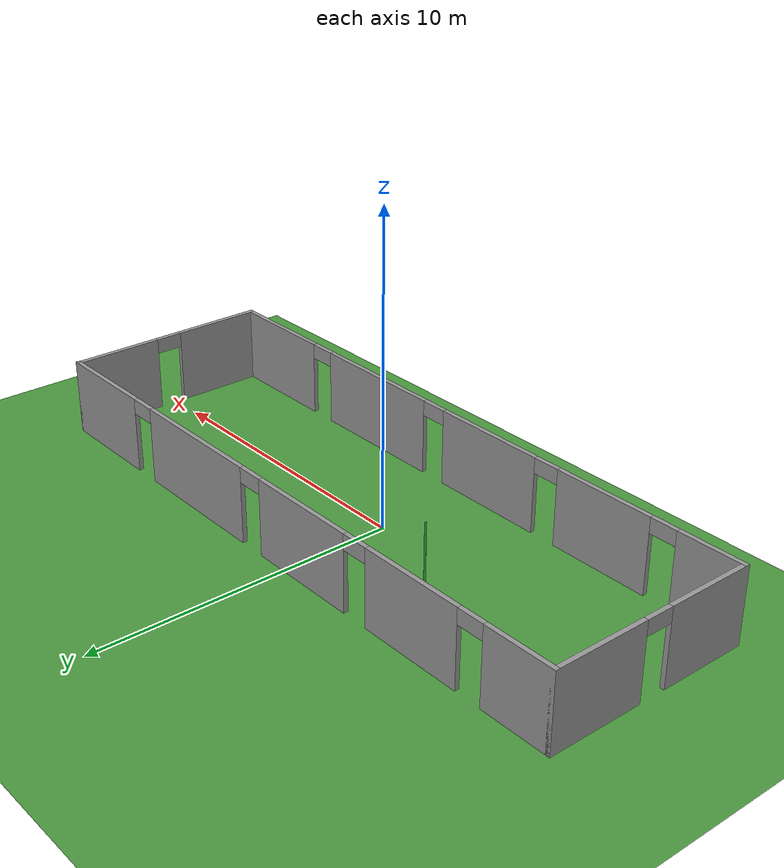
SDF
<sdf version="1.7">
 <world name="default">
  <include><uri>model://sun</uri></include>
  <gravity>0 0 -9.8</gravity>
  <magnetic_field>6e-06 2.3e-05 -4.2e-05</magnetic_field>
  <atmosphere type="adiabatic"/>
  <physics type="ode">
   <max_step_size>0.001</max_step_size>
   <real_time_factor>1</real_time_factor>
   <real_time_update_rate>1000</real_time_update_rate>
  </physics>
  <scene><ambient>0.4 0.4 0.4 1</ambient><background>0.7 0.7 0.7 1</background><shadows>1</shadows></scene>
  <spherical_coordinates>
   <surface_model>EARTH_WGS84</surface_model>
   <latitude_deg>0</latitude_deg>
   <longitude_deg>0</longitude_deg>
   <elevation>0</elevation>
   <heading_deg>0</heading_deg>
  </spherical_coordinates>
  <model name="ground_plane">
   <static>true</static>
   <link name="link">
    <collision name="collision">
     <geometry><plane><normal>0 0 1</normal><size>100 100</size></plane></geometry>
     <surface><friction><ode><mu>100</mu><mu2>50</mu2></ode></friction></surface>
    </collision>
    <visual name="visual">
     <geometry><plane><normal>0 0 1</normal><size>100 100</size></plane></geometry>
     <material>
      <script><uri>file://media/materials/scripts/gazebo.material</uri><name>Gazebo/Grass</name></script>
     </material>
    </visual>
   </link>
  </model>
  <model name="Hallway_0">
   <pose>0.439449 0.139492 0 0 -0 0</pose>
   <link name="Wall_0">
    <pose>-0.091771 -3.425 0 0 -0 0</pose>
    <visual name="Wall_0_Visual_0">
     <pose>-9.62929 0 1.25 0 -0 0</pose>
     <geometry><box><size>2.24143 0.15 2.5</size></box></geometry>
     <material>
      <script><uri>file://media/materials/scripts/gazebo.material</uri><name>Gazebo/Grey</name></script>
      <ambient>1 1 1 1</ambient>
     </material>
     <meta><layer>0</layer></meta>
    </visual>
    <collision name="Wall_0_Collision_0">
     <geometry><box><size>2.24143 0.15 2.5</size></box></geometry>
     <pose>-9.62929 0 1.25 0 -0 0</pose>
    </collision>
    <visual name="Wall_0_Visual_1">
     <pose>-5.89586 0 1.25 0 -0 0</pose>
     <geometry><box><size>3.42542 0.15 2.5</size></box></geometry>
     <material>
      <script><uri>file://media/materials/scripts/gazebo.material</uri><name>Gazebo/Grey</name></script>
      <ambient>1 1 1 1</ambient>
     </material>
     <meta><layer>0</layer></meta>
    </visual>
    <collision name="Wall_0_Collision_1">
     <geometry><box><size>3.42542 0.15 2.5</size></box></geometry>
     <pose>-5.89586 0 1.25 0 -0 0</pose>
    </collision>
    <visual name="Wall_0_Visual_2">
     <pose>-1.32757 0 1.25 0 -0 0</pose>
     <geometry><box><size>3.91117 0.15 2.5</size></box></geometry>
     <material>
      <script><uri>file://media/materials/scripts/gazebo.material</uri><name>Gazebo/Grey</name></script>
      <ambient>1 1 1 1</ambient>
     </material>
     <meta><layer>0</layer></meta>
    </visual>
    <collision name="Wall_0_Collision_2">
     <geometry><box><size>3.91117 0.15 2.5</size></box></geometry>
     <pose>-1.32757 0 1.25 0 -0 0</pose>
    </collision>
    <visual name="Wall_0_Visual_3">
     <pose>3.86525 0 1.25 0 -0 0</pose>
     <geometry><box><size>4.67448 0.15 2.5</size></box></geometry>
     <material>
      <script><uri>file://media/materials/scripts/gazebo.material</uri><name>Gazebo/Grey</name></script>
      <ambient>1 1 1 1</ambient>
     </material>
     <meta><layer>0</layer></meta>
    </visual>
    <collision name="Wall_0_Collision_3">
     <geometry><box><size>4.67448 0.15 2.5</size></box></geometry>
     <pose>3.86525 0 1.25 0 -0 0</pose>
    </collision>
    <visual name="Wall_0_Visual_4">
     <pose>8.92625 0 1.25 0 -0 0</pose>
     <geometry><box><size>3.64751 0.15 2.5</size></box></geometry>
     <material>
      <script><uri>file://media/materials/scripts/gazebo.material</uri><name>Gazebo/Grey</name></script>
      <ambient>1 1 1 1</ambient>
     </material>
     <meta><layer>0</layer></meta>
    </visual>
    <collision name="Wall_0_Collision_4">
     <geometry><box><size>3.64751 0.15 2.5</size></box></geometry>
     <pose>8.92625 0 1.25 0 -0 0</pose>
    </collision>
    <visual name="Wall_0_Visual_5">
     <pose>-8.05857 0 2.25 0 -0 0</pose>
     <geometry><box><size>0.9 0.15 0.5</size></box></geometry>
     <material>
      <script><uri>file://media/materials/scripts/gazebo.material</uri><name>Gazebo/Grey</name></script>
      <ambient>1 1 1 1</ambient>
     </material>
     <meta><layer>0</layer></meta>
    </visual>
    <collision name="Wall_0_Collision_5">
     <geometry><box><size>0.9 0.15 0.5</size></box></geometry>
     <pose>-8.05857 0 2.25 0 -0 0</pose>
    </collision>
    <visual name="Wall_0_Visual_6">
     <pose>-3.73315 0 2.25 0 -0 0</pose>
     <geometry><box><size>0.9 0.15 0.5</size></box></geometry>
     <material>
      <script><uri>file://media/materials/scripts/gazebo.material</uri><name>Gazebo/Grey</name></script>
      <ambient>1 1 1 1</ambient>
     </material>
     <meta><layer>0</layer></meta>
    </visual>
    <collision name="Wall_0_Collision_6">
     <geometry><box><size>0.9 0.15 0.5</size></box></geometry>
     <pose>-3.73315 0 2.25 0 -0 0</pose>
    </collision>
    <visual name="Wall_0_Visual_7">
     <pose>1.07802 0 2.25 0 -0 0</pose>
     <geometry><box><size>0.9 0.15 0.5</size></box></geometry>
     <material>
      <script><uri>file://media/materials/scripts/gazebo.material</uri><name>Gazebo/Grey</name></script>
      <ambient>1 1 1 1</ambient>
     </material>
     <meta><layer>0</layer></meta>
    </visual>
    <collision name="Wall_0_Collision_7">
     <geometry><box><size>0.9 0.15 0.5</size></box></geometry>
     <pose>1.07802 0 2.25 0 -0 0</pose>
    </collision>
    <visual name="Wall_0_Visual_8">
     <pose>6.65249 0 2.25 0 -0 0</pose>
     <geometry><box><size>0.9 0.15 0.5</size></box></geometry>
     <material>
      <script><uri>file://media/materials/scripts/gazebo.material</uri><name>Gazebo/Grey</name></script>
      <ambient>1 1 1 1</ambient>
     </material>
     <meta><layer>0</layer></meta>
    </visual>
    <collision name="Wall_0_Collision_8">
     <geometry><box><size>0.9 0.15 0.5</size></box></geometry>
     <pose>6.65249 0 2.25 0 -0 0</pose>
    </collision>
   </link>
   <link name="Wall_3">
    <pose>0 3.425 0 0 -0 0</pose>
    <visual name="Wall_3_Visual_0">
     <pose>-9.65149 0 1.25 0 -0 0</pose>
     <geometry><box><size>2.38056 0.15 2.5</size></box></geometry>
     <material>
      <script><uri>file://media/materials/scripts/gazebo.material</uri><name>Gazebo/Grey</name></script>
      <ambient>1 1 1 1</ambient>
     </material>
     <meta><layer>0</layer></meta>
    </visual>
    <collision name="Wall_3_Collision_0">
     <geometry><box><size>2.38056 0.15 2.5</size></box></geometry>
     <pose>-9.65149 0 1.25 0 -0 0</pose>
    </collision>
    <visual name="Wall_3_Visual_1">
     <pose>-5.80657 0 1.25 0 -0 0</pose>
     <geometry><box><size>3.50927 0.15 2.5</size></box></geometry>
     <material>
      <script><uri>file://media/materials/scripts/gazebo.material</uri><name>Gazebo/Grey</name></script>
      <ambient>1 1 1 1</ambient>
     </material>
     <meta><layer>0</layer></meta>
    </visual>
    <collision name="Wall_3_Collision_1">
     <geometry><box><size>3.50927 0.15 2.5</size></box></geometry>
     <pose>-5.80657 0 1.25 0 -0 0</pose>
    </collision>
    <visual name="Wall_3_Visual_2">
     <pose>-1.25733 0 1.25 0 -0 0</pose>
     <geometry><box><size>3.78922 0.15 2.5</size></box></geometry>
     <material>
      <script><uri>file://media/materials/scripts/gazebo.material</uri><name>Gazebo/Grey</name></script>
      <ambient>1 1 1 1</ambient>
     </material>
     <meta><layer>0</layer></meta>
    </visual>
    <collision name="Wall_3_Collision_2">
     <geometry><box><size>3.78922 0.15 2.5</size></box></geometry>
     <pose>-1.25733 0 1.25 0 -0 0</pose>
    </collision>
    <visual name="Wall_3_Visual_3">
     <pose>3.93348 0 1.25 0 -0 0</pose>
     <geometry><box><size>4.79239 0.15 2.5</size></box></geometry>
     <material>
      <script><uri>file://media/materials/scripts/gazebo.material</uri><name>Gazebo/Grey</name></script>
      <ambient>1 1 1 1</ambient>
     </material>
     <meta><layer>0</layer></meta>
    </visual>
    <collision name="Wall_3_Collision_3">
     <geometry><box><size>4.79239 0.15 2.5</size></box></geometry>
     <pose>3.93348 0 1.25 0 -0 0</pose>
    </collision>
    <visual name="Wall_3_Visual_4">
     <pose>9.03572 0 1.25 0 -0 0</pose>
     <geometry><box><size>3.6121 0.15 2.5</size></box></geometry>
     <material>
      <script><uri>file://media/materials/scripts/gazebo.material</uri><name>Gazebo/Grey</name></script>
      <ambient>1 1 1 1</ambient>
     </material>
     <meta><layer>0</layer></meta>
    </visual>
    <collision name="Wall_3_Collision_4">
     <geometry><box><size>3.6121 0.15 2.5</size></box></geometry>
     <pose>9.03572 0 1.25 0 -0 0</pose>
    </collision>
    <visual name="Wall_3_Visual_5">
     <pose>-8.01121 0 2.25 0 -0 0</pose>
     <geometry><box><size>0.9 0.15 0.5</size></box></geometry>
     <material>
      <script><uri>file://media/materials/scripts/gazebo.material</uri><name>Gazebo/Grey</name></script>
      <ambient>1 1 1 1</ambient>
     </material>
     <meta><layer>0</layer></meta>
    </visual>
    <collision name="Wall_3_Collision_5">
     <geometry><box><size>0.9 0.15 0.5</size></box></geometry>
     <pose>-8.01121 0 2.25 0 -0 0</pose>
    </collision>
    <visual name="Wall_3_Visual_6">
     <pose>-3.60194 0 2.25 0 -0 0</pose>
     <geometry><box><size>0.9 0.15 0.5</size></box></geometry>
     <material>
      <script><uri>file://media/materials/scripts/gazebo.material</uri><name>Gazebo/Grey</name></script>
      <ambient>1 1 1 1</ambient>
     </material>
     <meta><layer>0</layer></meta>
    </visual>
    <collision name="Wall_3_Collision_6">
     <geometry><box><size>0.9 0.15 0.5</size></box></geometry>
     <pose>-3.60194 0 2.25 0 -0 0</pose>
    </collision>
    <visual name="Wall_3_Visual_7">
     <pose>1.08728 0 2.25 0 -0 0</pose>
     <geometry><box><size>0.9 0.15 0.5</size></box></geometry>
     <material>
      <script><uri>file://media/materials/scripts/gazebo.material</uri><name>Gazebo/Grey</name></script>
      <ambient>1 1 1 1</ambient>
     </material>
     <meta><layer>0</layer></meta>
    </visual>
    <collision name="Wall_3_Collision_7">
     <geometry><box><size>0.9 0.15 0.5</size></box></geometry>
     <pose>1.08728 0 2.25 0 -0 0</pose>
    </collision>
    <visual name="Wall_3_Visual_8">
     <pose>6.77967 0 2.25 0 -0 0</pose>
     <geometry><box><size>0.9 0.15 0.5</size></box></geometry>
     <material>
      <script><uri>file://media/materials/scripts/gazebo.material</uri><name>Gazebo/Grey</name></script>
      <ambient>1 1 1 1</ambient>
     </material>
     <meta><layer>0</layer></meta>
    </visual>
    <collision name="Wall_3_Collision_8">
     <geometry><box><size>0.9 0.15 0.5</size></box></geometry>
     <pose>6.77967 0 2.25 0 -0 0</pose>
    </collision>
   </link>
   <link name="Wall_5">
    <pose>-10.7668 0 0 0 -0 -1.5708</pose>
    <visual name="Wall_5_Visual_0">
     <pose>-1.92557 0 1.25 0 -0 0</pose>
     <geometry><box><size>3.14886 0.15 2.5</size></box></geometry>
     <material>
      <script><uri>file://media/materials/scripts/gazebo.material</uri><name>Gazebo/Grey</name></script>
      <ambient>1 1 1 1</ambient>
     </material>
     <meta><layer>0</layer></meta>
    </visual>
    <collision name="Wall_5_Collision_0">
     <geometry><box><size>3.14886 0.15 2.5</size></box></geometry>
     <pose>-1.92557 0 1.25 0 -0 0</pose>
    </collision>
    <visual name="Wall_5_Visual_1">
     <pose>2.02443 0 1.25 0 -0 0</pose>
     <geometry><box><size>2.95114 0.15 2.5</size></box></geometry>
     <material>
      <script><uri>file://media/materials/scripts/gazebo.material</uri><name>Gazebo/Grey</name></script>
      <ambient>1 1 1 1</ambient>
     </material>
     <meta><layer>0</layer></meta>
    </visual>
    <collision name="Wall_5_Collision_1">
     <geometry><box><size>2.95114 0.15 2.5</size></box></geometry>
     <pose>2.02443 0 1.25 0 -0 0</pose>
    </collision>
    <visual name="Wall_5_Visual_2">
     <pose>0.098859 0 2.25 0 -0 0</pose>
     <geometry><box><size>0.9 0.15 0.5</size></box></geometry>
     <material>
      <script><uri>file://media/materials/scripts/gazebo.material</uri><name>Gazebo/Grey</name></script>
      <ambient>1 1 1 1</ambient>
     </material>
     <meta><layer>0</layer></meta>
    </visual>
    <collision name="Wall_5_Collision_2">
     <geometry><box><size>0.9 0.15 0.5</size></box></geometry>
     <pose>0.098859 0 2.25 0 -0 0</pose>
    </collision>
   </link>
   <link name="Wall_7">
    <pose>10.7362 0 0 0 -0 -1.5708</pose>
    <visual name="Wall_7_Visual_0">
     <pose>-1.98708 0 1.25 0 -0 0</pose>
     <geometry><box><size>3.02584 0.15 2.5</size></box></geometry>
     <material>
      <script><uri>file://media/materials/scripts/gazebo.material</uri><name>Gazebo/Grey</name></script>
      <ambient>1 1 1 1</ambient>
     </material>
     <meta><layer>0</layer></meta>
    </visual>
    <collision name="Wall_7_Collision_0">
     <geometry><box><size>3.02584 0.15 2.5</size></box></geometry>
     <pose>-1.98708 0 1.25 0 -0 0</pose>
    </collision>
    <visual name="Wall_7_Visual_1">
     <pose>1.96292 0 1.25 0 -0 0</pose>
     <geometry><box><size>3.07416 0.15 2.5</size></box></geometry>
     <material>
      <script><uri>file://media/materials/scripts/gazebo.material</uri><name>Gazebo/Grey</name></script>
      <ambient>1 1 1 1</ambient>
     </material>
     <meta><layer>0</layer></meta>
    </visual>
    <collision name="Wall_7_Collision_1">
     <geometry><box><size>3.07416 0.15 2.5</size></box></geometry>
     <pose>1.96292 0 1.25 0 -0 0</pose>
    </collision>
    <visual name="Wall_7_Visual_2">
     <pose>-0.024155 0 2.25 0 -0 0</pose>
     <geometry><box><size>0.9 0.15 0.5</size></box></geometry>
     <material>
      <script><uri>file://media/materials/scripts/gazebo.material</uri><name>Gazebo/Grey</name></script>
      <ambient>1 1 1 1</ambient>
     </material>
     <meta><layer>0</layer></meta>
    </visual>
    <collision name="Wall_7_Collision_2">
     <geometry><box><size>0.9 0.15 0.5</size></box></geometry>
     <pose>-0.024155 0 2.25 0 -0 0</pose>
    </collision>
   </link>
   <static>1</static>
  </model>
  <model name="pole">
   <link name="link_0">
    <inertial>
     <mass>0.00923403</mass>
     <inertia>
      <ixx>0.00305283</ixx>
      <ixy>0</ixy>
      <ixz>0</ixz>
      <iyy>0.00305283</iyy>
      <iyz>0</iyz>
      <izz>5.33269e-06</izz>
     </inertia>
    </inertial>
    <visual name="visual">
     <geometry><cylinder><radius>0.0339854</radius><length>1.99093</length></cylinder></geometry>
     <material>
      <lighting>1</lighting>
      <script><uri>file://media/materials/scripts/gazebo.material</uri><name>Gazebo/Green</name></script>
      <shader type="pixel"/>
     </material>
    </visual>
    <collision name="collision">
     <geometry><cylinder><radius>0.033985</radius><length>1.99093</length></cylinder></geometry>
     <surface>
      <friction>
       <ode><mu>1</mu><mu2>1</mu2><fdir1>0 0 0</fdir1><slip1>0</slip1><slip2>0</slip2></ode>
       <torsional>
        <coefficient>1</coefficient>
        <patch_radius>0</patch_radius>
        <surface_radius>0</surface_radius>
        <use_patch_radius>1</use_patch_radius>
        <ode><slip>0</slip></ode>
       </torsional>
      </friction>
      <bounce><restitution_coefficient>0</restitution_coefficient><threshold>1e+06</threshold></bounce>
      <contact>
       <collide_without_contact>0</collide_without_contact>
       <collide_without_contact_bitmask>1</collide_without_contact_bitmask>
       <collide_bitmask>1</collide_bitmask>
       <ode>
        <soft_cfm>0</soft_cfm>
        <soft_erp>0.2</soft_erp>
        <kp>1e+13</kp>
        <kd>1</kd>
        <max_vel>0.01</max_vel>
        <min_depth>0</min_depth>
       </ode>
       <bullet>
        <split_impulse>1</split_impulse>
        <split_impulse_penetration_threshold>-0.01</split_impulse_penetration_threshold>
        <soft_cfm>0</soft_cfm>
        <soft_erp>0.2</soft_erp>
        <kp>1e+13</kp>
        <kd>1</kd>
       </bullet>
      </contact>
     </surface>
    </collision>
   </link>
   <static>0</static>
   <pose>-3 1 0.987109 0 -0 0</pose>
  </model>
 </world>
</sdf>
